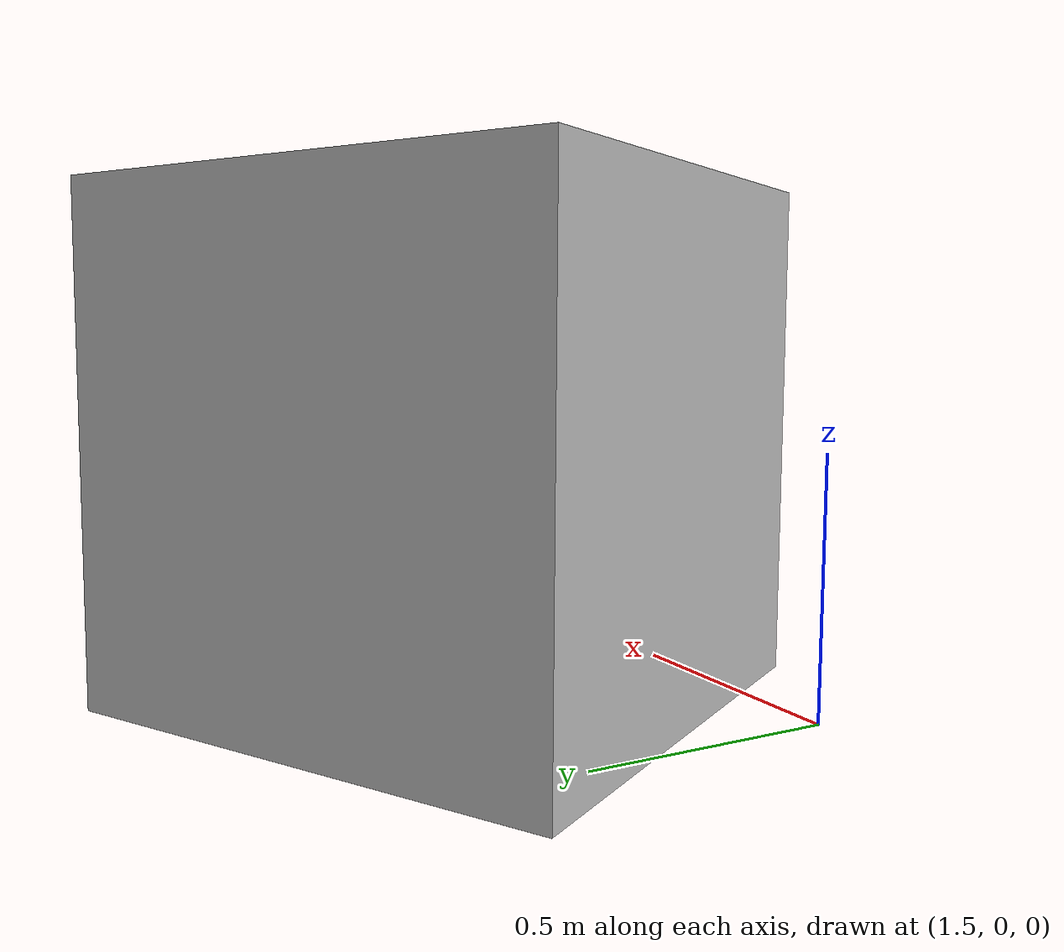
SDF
<?xml version='1.0'?>
<sdf version='1.6'>
		<model name="testlinkc">
			<self_collide>true</self_collide>
			<pose>0.0 0.0 0.0 0.0 0.0 0.0</pose>
			<!-- Start of parts of the pmodel testlinkc -->
			<!-- End of parts of the pmodel testlinkc -->

			<!-- Start of links of the pmodel testlinkc -->
			<!-- link full name is testlinkc::linkC -->
			<link name="1-linkC">
					<pose>2.0 0.5 0.5 1.5707999467849731 3.141590118408203 -1.0471999645233154</pose>
					<inertial>
						<pose>0.0 0.0 0.0 0.0 0.0 0.0</pose>
						<inertia>
							<ixx>1.0</ixx>
							<ixy>0.0</ixy>
							<ixz>0.0</ixz>
							<iyy>1.0</iyy>
							<iyz>0.0</iyz>
							<izz>1.0</izz>
						</inertia>
						<mass>1.0</mass>
					</inertial>
					<!-- body full name is testlinkc::linkC::bodyC -->
					<collision name="1--bodyC">
						<laser_retro>0.0</laser_retro>
						<pose>0.0 0.0 0.0 0.0 0.0 0.0</pose>
						<geometry>
							<box>
								<size>1.0 1.0 1.0</size>
							</box>
						</geometry>
						<surface>
							<bounce>
								<restitution_coefficient>0.0</restitution_coefficient>
								<threshold>100000.0</threshold>
							</bounce>
							<friction>
								<ode>
									<mu>1.0</mu>
									<mu2>1.0</mu2>
									<fdir1>0.0 0.0 0.0</fdir1>
									<slip1>0.0</slip1>
									<slip2>0.0</slip2>
								</ode>
								<torsional>
									<coefficient>1.0</coefficient>
									<surface_radius>0.0</surface_radius>
								</torsional>
							</friction>
						</surface>
					</collision>
					<visual name="1--bodyC">
						<laser_retro>0.0</laser_retro>
						<pose>0.0 0.0 0.0 0.0 0.0 0.0</pose>
						<geometry>
							<box>
								<size>1.0 1.0 1.0</size>
							</box>
						</geometry>
						<surface>
							<bounce>
								<restitution_coefficient>0.0</restitution_coefficient>
								<threshold>100000.0</threshold>
							</bounce>
							<friction>
								<ode>
									<mu>1.0</mu>
									<mu2>1.0</mu2>
									<fdir1>0.0 0.0 0.0</fdir1>
									<slip1>0.0</slip1>
									<slip2>0.0</slip2>
								</ode>
								<torsional>
									<coefficient>1.0</coefficient>
									<surface_radius>0.0</surface_radius>
								</torsional>
							</friction>
						</surface>
					</visual>
			</link>
			<!-- End of links of the pmodel testlinkc -->

			<!-- Start of joints of the pmodel testlinkc -->
			<!-- End of joints of the pmodel testlinkc -->

			<!-- Start of fixed connections of the pmodel testlinkc -->
			<!-- End of fixed connections of the pmodel testlinkc -->
		</model>
</sdf>
